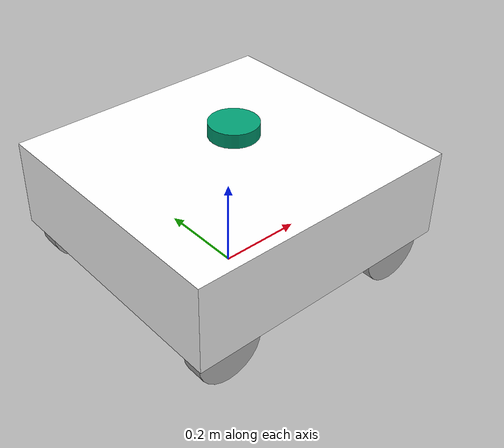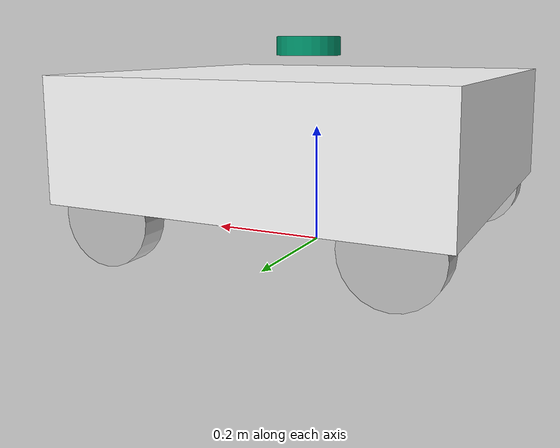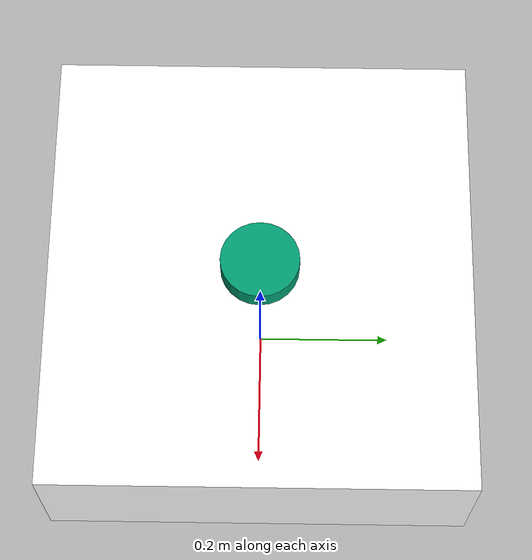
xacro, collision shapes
<?xml version="1.0"?>

<robot name="omni_manipulator" xmlns:xacro="http://www.ros.org/wiki/xacro">

	<!--xacro:include filename="$(find omni_manipulator)/urdf/cycloid_gear_mecanum_wheel.urdf.xacro" /!-->
	<xacro:include filename="$(find mecanum_robot_description)/urdf/mecanum_robot/mecanum_frame.urdf.xacro" />
	<xacro:include filename="$(find mecanum_robot_description)/urdf/mecanum_robot/cycloid_gear_mecanum_wheel.urdf.xacro" />
	<xacro:include filename="$(find mecanum_robot_description)/urdf/mecanum_robot/mecanum.gazebo.xacro" />

    <xacro:macro name="robot">
		<xacro:mecanum_robot/>

		<xacro:mecanum_wheel prefix="front_R" parent="base_link" reflect="true">
			<origin xyz="0.23 -0.2541 -0.11838" rpy="${-pi/2} 0 0"/>
		</xacro:mecanum_wheel>

         <xacro:mecanum_wheel prefix="front_L" parent="base_link" reflect="false">
			<origin xyz="0.23 0.2541 -0.11838" rpy="${-pi/2} 0 0"/>
		</xacro:mecanum_wheel>

		<xacro:mecanum_wheel prefix="back_R" parent="base_link" reflect="false">
			<origin xyz="-0.23 -0.2541 -0.11838" rpy="${pi/2} 0 0"/>
		</xacro:mecanum_wheel>

        <xacro:mecanum_wheel prefix="back_L" parent="base_link" reflect="true">
			<origin xyz="-0.23 0.2541 -0.11838" rpy="${pi/2} 0 0"/>
		</xacro:mecanum_wheel>

		<xacro:omni_steering/>
		<xacro:sensor_gazebo/>

   		</xacro:macro>

	<xacro:robot/>

</robot>

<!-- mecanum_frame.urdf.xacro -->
<robot xmlns:xacro="http://www.ros.org/wiki/xacro" name="robot_frame">
	<xacro:include filename="$(find mecanum_robot_description)/urdf/mecanum_robot/cycloid_gear_mecanum_wheel.urdf.xacro" />

  <xacro:property name="base_offset" value="0.19458"/>

  <xacro:property name="wheel_mass" value="0.456"/>
  <xacro:property name="wheel_Ixx" value="0.000863585"/>
  <xacro:property name="wheel_Ixy" value="0.0"/>
  <xacro:property name="wheel_Ixz" value="0.0"/>
  <xacro:property name="wheel_Iyy" value="0.000863585"/>
  <xacro:property name="wheel_Iyz" value="0.0"/>
  <xacro:property name="wheel_Izz" value="0.001586256"/>
  <xacro:property name="radius" value="0.0762"/>
  <xacro:property name="length" value="0.045"/>

  <xacro:macro name="mecanum_robot">
        <!--xacro:include filename="$(find mecanum_robot_description)/urdf/omni_manipulator.gazebo.xacro" /!-->
    <link name="base_footprint">
		  <visual>
			  <origin xyz="0 0 0" rpy="0 0 0" />
			  <geometry>
				 <box size="0.001 0.001 0.001" />
			  </geometry>
		  </visual>
		</link>

		<joint name="base_footprint_joint" type="fixed">
		  <origin xyz="0 0 ${base_offset}" rpy="0 0 0" /> <!-- ${wheel_radius} property must be defined inside wheel description -->
		  <parent link="base_footprint"/>
		  <child link="base_link" />
		</joint>

        <link name="base_link">
            <visual>
              <origin xyz="0.0 0.0 0.0" rpy="${pi/2} 0.0 ${-pi/2}"/> <!--xyz="0.0 0.0 0.0" rpy="${pi/2} 0.0 ${-pi/2}" -->
                <geometry>
                    <mesh filename="package://mecanum_robot_description/meshes/frame_c.stl" scale="0.001 0.001 0.001"/>
                </geometry>
                <material name="white">
                    <color rgba="1.0 1.0 1.0 1.0"/>
                </material>
            </visual>
            <collision>
              <origin xyz="0 0 0" rpy="0.0 0.0 0.0"/>
                <geometry>
                    <box size="0.64 0.598 0.2"/>
                    <!--mesh filename="package://omni_manipulator/meshes/frame_c.stl" scale="0.001 0.001 0.001"/!-->
                </geometry>
            </collision>
            <inertial>
                <mass value="20.781" />
                <origin xyz="0.0 0.0 -0.1" rpy="${pi/2} 0.0 ${-pi/2}"/>
                <inertia ixx="1.0" ixy="9.6705e-05"  ixz="0.000248215"  iyy="1.66"  iyz="0.00284912"  izz="0.855" />
            </inertial>
        </link>

        <joint name="scan_joint" type="fixed">
            <parent link="base_link"/>
            <child link="base_scan"/>
            <origin xyz="0 0 0.15" rpy="0 0 0"/>
        </joint>

        <link name="base_scan">
            <visual>
              <origin xyz="0 0 0" rpy="0 0 0"/>
              <geometry>
                <mesh filename="package://mecanum_robot_description/meshes/sensors/lds.stl" scale="0.001 0.001 0.001"/>
              </geometry>
            </visual>

            <collision>
              <origin xyz="0.015 0 -0.0065" rpy="0 0 0"/>
              <geometry>
                <cylinder length="0.0315" radius="0.055"/>
              </geometry>
            </collision>

            <inertial>
              <mass value="0.114" />
              <origin xyz="0 0 0" />
              <inertia ixx="0.001" ixy="0.0" ixz="0.0"
                       iyy="0.001" iyz="0.0"
                       izz="0.001" />
            </inertial>
        </link>

        <joint name="camera_joint" type="fixed">
            <parent link="base_link"/>
            <child link="camera_link"/>
            <origin xyz="0.25 -0.08 0" rpy="0 0 0"/>
        </joint>

        <link name="camera_link">
            <visual>
             <origin xyz="0 0 0" rpy="1.57 0 1.57"/>
              <geometry>
               <mesh filename="package://turtlebot3_description/meshes/sensors/r200.dae" />
              </geometry>
            </visual>
            <collision>
              <origin xyz="0.003 0.065 0.007" rpy="0 0 0"/>
              <geometry>
                <box size="0.012 0.132 0.020"/>
              </geometry>
            </collision>
        </link>

        <joint name="imu_joint" type="fixed">
          <parent link="base_link"/>
          <child link="imu_link"/>
          <origin xyz="0.0 0.0 0.10" rpy="0 0 0"/>
        </joint>

        <link name="imu_link"/>

    </xacro:macro>
</robot>

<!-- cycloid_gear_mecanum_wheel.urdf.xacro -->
<robot xmlns:xacro="http://www.ros.org/wiki/xacro" name="wheel">

    <xacro:macro name = "mecanum_wheel" params = "prefix parent *origin reflect">
        <xacro:property name="wheel_mass" value="0.456"/>
        <xacro:property name="wheel_Ixx" value="0.000863585"/>
        <xacro:property name="wheel_Ixy" value="0.0"/>
        <xacro:property name="wheel_Ixz" value="0.0"/>
        <xacro:property name="wheel_Iyy" value="0.000863585"/>
        <xacro:property name="wheel_Iyz" value="0.0"/>
        <xacro:property name="wheel_Izz" value="0.001586256"/>
        <xacro:property name="radius" value="0.0762"/>
        <xacro:property name="length" value="0.045"/>

        <joint name="${prefix}_wheel_joint" type="continuous"> <!--fixed!-->
            <parent link="${parent}"/>
            <child link="${prefix}_wheel"/>
            <xacro:insert_block name="origin" />
            <axis xyz="0 0 -1" rpy="0 0 0" />
            <limit effort="100" velocity="1000"/>
            <joint_properties damping="0.0" friction="1.0"/>
        </joint>

        <link name="${prefix}_wheel">
            <visual>
                <origin xyz="0 0 0" rpy="0 0 0" />
                <xacro:if value="${reflect}">
                <geometry>
                    <mesh filename="package://mecanum_robot_description/meshes/mecanum_left.stl" scale="0.001 0.001 0.001" />
                </geometry>
                <material name="grey">
                    <color rgba="0.75 0.75 0.75 1.0"/>
                </material>
                </xacro:if>
                <xacro:unless value="${reflect}">
                <geometry>
                    <mesh filename="package://mecanum_robot_description/meshes/mecanum_right.stl" scale="0.001 0.001 0.001" />
                </geometry>
                <material name="grey">
                    <color rgba="0.75 0.75 0.75 1.0"/>
                </material>
                </xacro:unless>
            </visual>

            <collision>
            <xacro:if value="${reflect}">
                <geometry>
                    <cylinder length="${length}" radius="${radius}"/>
                    <!--mesh filename="package://omni_manipulator/meshes/mecanum_left.stl" scale="0.001 0.001 0.001" /!-->
                </geometry>
                </xacro:if>
                <xacro:unless value="${reflect}">
                <geometry>
                    <cylinder length="${length}" radius="${radius}"/>
                    <!--mesh filename="package://omni_manipulator/meshes/mecanum_right.stl" scale="0.001 0.001 0.001" /!-->
                    </geometry>
                </xacro:unless>
            </collision>

            <inertial>
                <mass value="${wheel_mass}" />
                <origin xyz="0 0 0" />
                <inertia ixx="${wheel_Ixx}" ixy="${wheel_Ixy}" ixz="${wheel_Ixz}" iyy="${wheel_Iyy}" iyz="${wheel_Iyz}" izz="${wheel_Izz}"/>
            </inertial>
        </link>

        <!-- Transmission is important to link the joints and the controller (see summit_xl_control/config/summit_xl_control.yaml)-->
        <transmission name="${prefix}_wheel_trans">
            <type>transmission_interface/SimpleTransmission</type>
            <joint name="${prefix}_wheel_joint" >
                <hardwareInterface>hardware_interface/VelocityJointInterface</hardwareInterface>
            </joint>
            <actuator name="${prefix}_wheel_motor">
                <hardwareInterface>hardware_interface/VelocityJointInterface</hardwareInterface>
                <mechanicalReduction>1</mechanicalReduction>
            </actuator>
        </transmission>

        <gazebo reference="${prefix}_wheel">
            <mu1>0.0</mu1>
            <mu2>0.0</mu2>
            <kp>1e+13</kp>
            <kd>1.0</kd>
            <minDepth>0.001</minDepth>
            <material>Gazebo/DarkGrey</material>
        </gazebo>

    </xacro:macro>
</robot>
